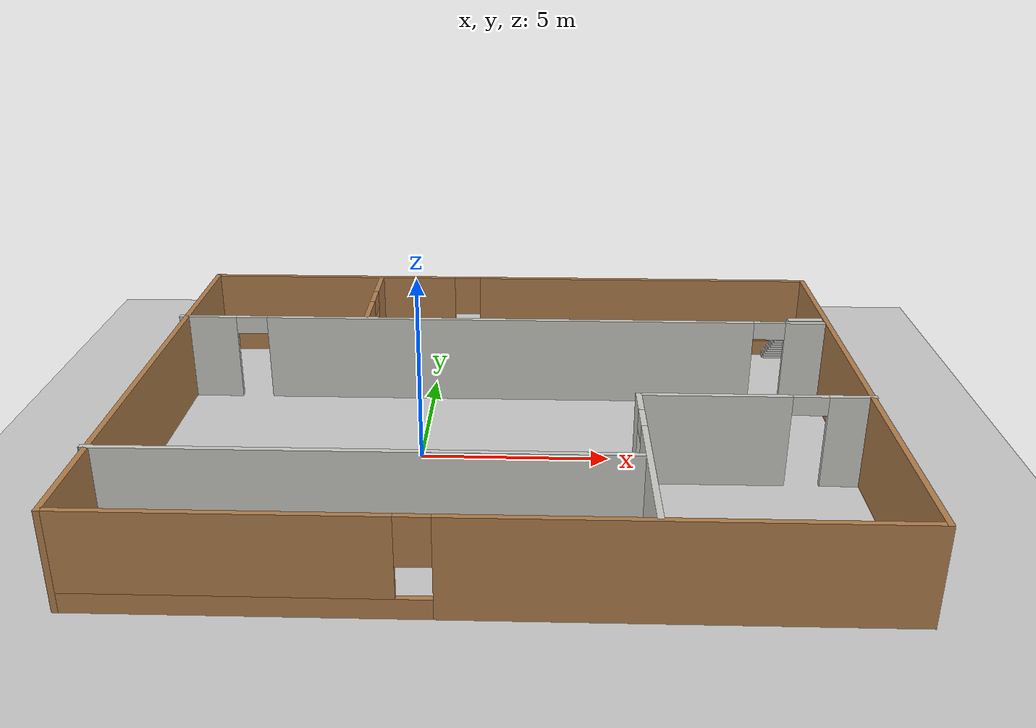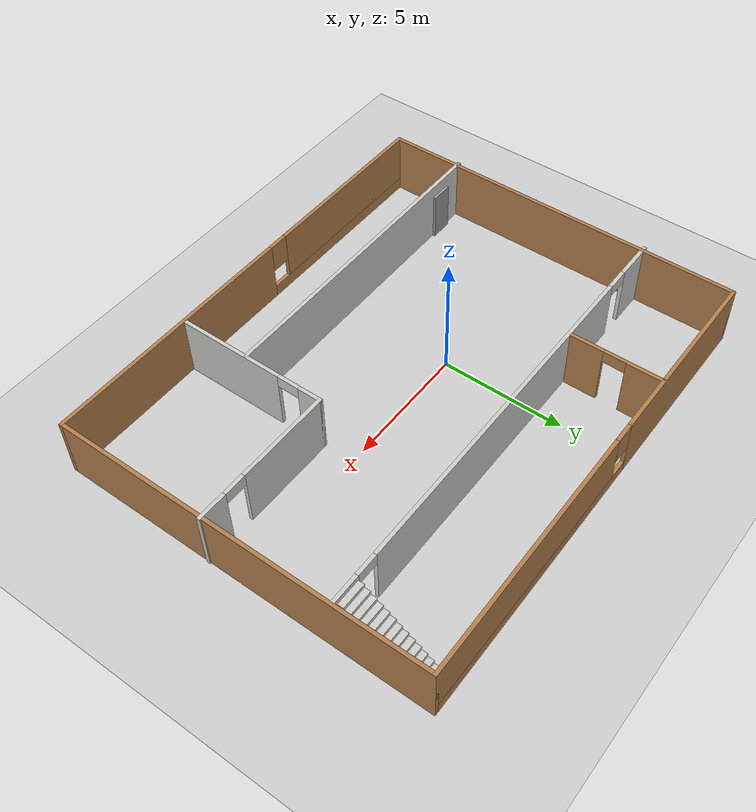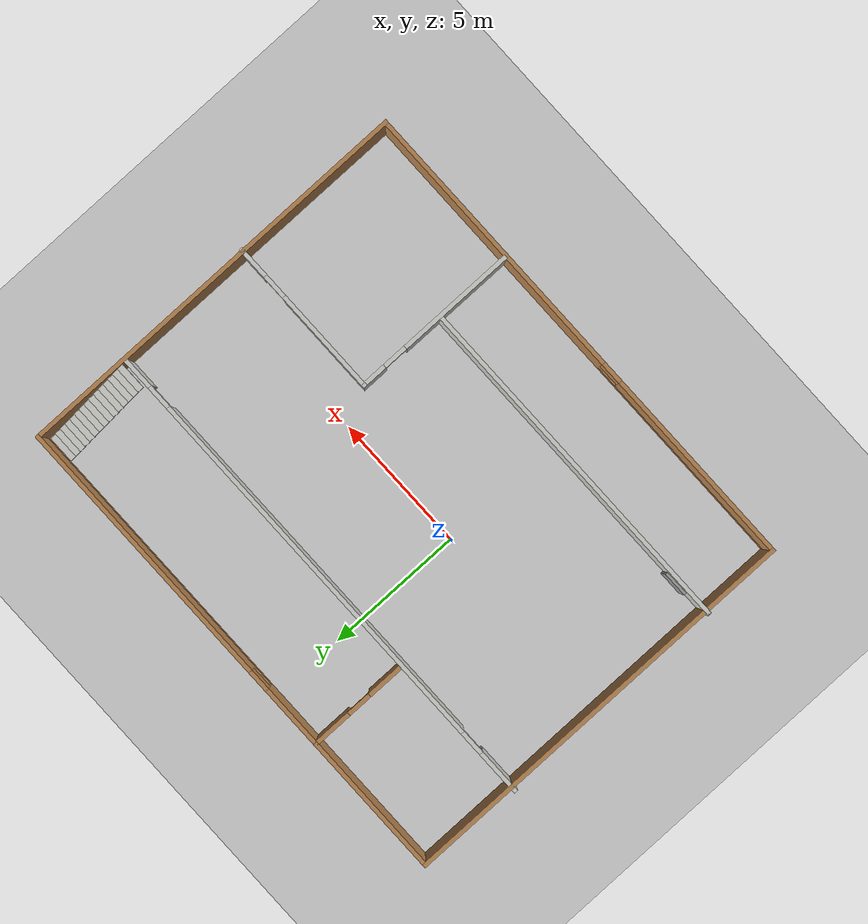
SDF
<sdf version="1.7">
 <world name="default">
  <light name="sun" type="directional">
   <pose>0 0 10 0 -0 0</pose>
   <diffuse>0.8 0.8 0.8 1</diffuse>
   <specular>0.2 0.2 0.2 1</specular>
   <attenuation>
    <range>1000</range>
    <constant>0.9</constant>
    <linear>0.01</linear>
    <quadratic>0.001</quadratic>
   </attenuation>
   <direction>-0.5 0.1 -0.9</direction>
   <spot><inner_angle>0</inner_angle><outer_angle>0</outer_angle><falloff>0</falloff></spot>
  </light>
  <model name="ground_plane">
   <static>1</static>
   <link name="link">
    <collision name="collision">
     <geometry><plane><normal>0 0 1</normal><size>100 100</size></plane></geometry>
     <surface>
      <contact><collide_bitmask>65535</collide_bitmask></contact>
      <friction><ode><mu>100</mu><mu2>50</mu2></ode></friction>
     </surface>
    </collision>
    <visual name="visual">
     <cast_shadows>0</cast_shadows>
     <geometry><plane><normal>0 0 1</normal><size>100 100</size></plane></geometry>
     <material>
      <script><uri>file://media/materials/scripts/gazebo.material</uri><name>Gazebo/Grey</name></script>
     </material>
    </visual>
   </link>
  </model>
  <gravity>0 0 -9.8</gravity>
  <magnetic_field>6e-06 2.3e-05 -4.2e-05</magnetic_field>
  <atmosphere type="adiabatic"/>
  <physics type="ode">
   <max_step_size>0.001</max_step_size>
   <real_time_factor>1</real_time_factor>
   <real_time_update_rate>1000</real_time_update_rate>
  </physics>
  <scene><ambient>0.4 0.4 0.4 1</ambient><background>0.7 0.7 0.7 1</background><shadows>1</shadows></scene>
  <audio><device>default</device></audio>
  <spherical_coordinates>
   <surface_model>EARTH_WGS84</surface_model>
   <latitude_deg>0</latitude_deg>
   <longitude_deg>0</longitude_deg>
   <elevation>0</elevation>
   <heading_deg>0</heading_deg>
  </spherical_coordinates>
  <model name="test">
   <pose>2.07152 0.081363 0 0 -0 0</pose>
   <link name="Door_3">
    <collision name="Door_3_Collision">
     <geometry><box><size>0.9 0.17 2</size></box></geometry>
     <pose>0 0 1 0 -0 0</pose>
    </collision>
    <visual name="Door_3_Visual">
     <pose>0 0 1 0 -0 0</pose>
     <geometry><box><size>0.9 0.17 2</size></box></geometry>
     <material>
      <script><uri>file://media/materials/scripts/gazebo.material</uri><name>Gazebo/Grey</name></script>
     </material>
    </visual>
    <pose>-7.99611 -4.57247 0 0 -0 0</pose>
   </link>
   <link name="Stairs_0">
    <visual name="Stairs_0_Visual_0">
     <pose>8.7525 7.34265 0.083333 0 -0 0</pose>
     <geometry><box><size>1 0.233333 0.166667</size></box></geometry>
     <material>
      <script><uri>file://media/materials/scripts/gazebo.material</uri><name>Gazebo/CeilingTiled</name></script>
      <ambient>1 1 1 1</ambient>
     </material>
     <meta><layer>0</layer></meta>
    </visual>
    <collision name="Stairs_0_Collision_0">
     <geometry><box><size>1 0.233333 0.166667</size></box></geometry>
     <pose>8.7525 7.34265 0.083333 0 -0 0</pose>
    </collision>
    <visual name="Stairs_0_Visual_1">
     <pose>8.7525 7.10932 0.25 0 -0 0</pose>
     <geometry><box><size>1 0.233333 0.166667</size></box></geometry>
     <material>
      <script><uri>file://media/materials/scripts/gazebo.material</uri><name>Gazebo/CeilingTiled</name></script>
      <ambient>1 1 1 1</ambient>
     </material>
     <meta><layer>0</layer></meta>
    </visual>
    <collision name="Stairs_0_Collision_1">
     <geometry><box><size>1 0.233333 0.166667</size></box></geometry>
     <pose>8.7525 7.10932 0.25 0 -0 0</pose>
    </collision>
    <visual name="Stairs_0_Visual_2">
     <pose>8.7525 6.87598 0.416667 0 -0 0</pose>
     <geometry><box><size>1 0.233333 0.166667</size></box></geometry>
     <material>
      <script><uri>file://media/materials/scripts/gazebo.material</uri><name>Gazebo/CeilingTiled</name></script>
      <ambient>1 1 1 1</ambient>
     </material>
     <meta><layer>0</layer></meta>
    </visual>
    <collision name="Stairs_0_Collision_2">
     <geometry><box><size>1 0.233333 0.166667</size></box></geometry>
     <pose>8.7525 6.87598 0.416667 0 -0 0</pose>
    </collision>
    <visual name="Stairs_0_Visual_3">
     <pose>8.7525 6.64265 0.583333 0 -0 0</pose>
     <geometry><box><size>1 0.233333 0.166667</size></box></geometry>
     <material>
      <script><uri>file://media/materials/scripts/gazebo.material</uri><name>Gazebo/CeilingTiled</name></script>
      <ambient>1 1 1 1</ambient>
     </material>
     <meta><layer>0</layer></meta>
    </visual>
    <collision name="Stairs_0_Collision_3">
     <geometry><box><size>1 0.233333 0.166667</size></box></geometry>
     <pose>8.7525 6.64265 0.583333 0 -0 0</pose>
    </collision>
    <visual name="Stairs_0_Visual_4">
     <pose>8.7525 6.40932 0.75 0 -0 0</pose>
     <geometry><box><size>1 0.233333 0.166667</size></box></geometry>
     <material>
      <script><uri>file://media/materials/scripts/gazebo.material</uri><name>Gazebo/CeilingTiled</name></script>
      <ambient>1 1 1 1</ambient>
     </material>
     <meta><layer>0</layer></meta>
    </visual>
    <collision name="Stairs_0_Collision_4">
     <geometry><box><size>1 0.233333 0.166667</size></box></geometry>
     <pose>8.7525 6.40932 0.75 0 -0 0</pose>
    </collision>
    <visual name="Stairs_0_Visual_5">
     <pose>8.7525 6.17598 0.916667 0 -0 0</pose>
     <geometry><box><size>1 0.233333 0.166667</size></box></geometry>
     <material>
      <script><uri>file://media/materials/scripts/gazebo.material</uri><name>Gazebo/CeilingTiled</name></script>
      <ambient>1 1 1 1</ambient>
     </material>
     <meta><layer>0</layer></meta>
    </visual>
    <collision name="Stairs_0_Collision_5">
     <geometry><box><size>1 0.233333 0.166667</size></box></geometry>
     <pose>8.7525 6.17598 0.916667 0 -0 0</pose>
    </collision>
    <visual name="Stairs_0_Visual_6">
     <pose>8.7525 5.94265 1.08333 0 -0 0</pose>
     <geometry><box><size>1 0.233333 0.166667</size></box></geometry>
     <material>
      <script><uri>file://media/materials/scripts/gazebo.material</uri><name>Gazebo/CeilingTiled</name></script>
      <ambient>1 1 1 1</ambient>
     </material>
     <meta><layer>0</layer></meta>
    </visual>
    <collision name="Stairs_0_Collision_6">
     <geometry><box><size>1 0.233333 0.166667</size></box></geometry>
     <pose>8.7525 5.94265 1.08333 0 -0 0</pose>
    </collision>
    <visual name="Stairs_0_Visual_7">
     <pose>8.7525 5.70932 1.25 0 -0 0</pose>
     <geometry><box><size>1 0.233333 0.166667</size></box></geometry>
     <material>
      <script><uri>file://media/materials/scripts/gazebo.material</uri><name>Gazebo/CeilingTiled</name></script>
      <ambient>1 1 1 1</ambient>
     </material>
     <meta><layer>0</layer></meta>
    </visual>
    <collision name="Stairs_0_Collision_7">
     <geometry><box><size>1 0.233333 0.166667</size></box></geometry>
     <pose>8.7525 5.70932 1.25 0 -0 0</pose>
    </collision>
    <visual name="Stairs_0_Visual_8">
     <pose>8.7525 5.47598 1.41667 0 -0 0</pose>
     <geometry><box><size>1 0.233333 0.166667</size></box></geometry>
     <material>
      <script><uri>file://media/materials/scripts/gazebo.material</uri><name>Gazebo/CeilingTiled</name></script>
      <ambient>1 1 1 1</ambient>
     </material>
     <meta><layer>0</layer></meta>
    </visual>
    <collision name="Stairs_0_Collision_8">
     <geometry><box><size>1 0.233333 0.166667</size></box></geometry>
     <pose>8.7525 5.47598 1.41667 0 -0 0</pose>
    </collision>
    <visual name="Stairs_0_Visual_9">
     <pose>8.7525 5.24265 1.58333 0 -0 0</pose>
     <geometry><box><size>1 0.233333 0.166667</size></box></geometry>
     <material>
      <script><uri>file://media/materials/scripts/gazebo.material</uri><name>Gazebo/CeilingTiled</name></script>
      <ambient>1 1 1 1</ambient>
     </material>
     <meta><layer>0</layer></meta>
    </visual>
    <collision name="Stairs_0_Collision_9">
     <geometry><box><size>1 0.233333 0.166667</size></box></geometry>
     <pose>8.7525 5.24265 1.58333 0 -0 0</pose>
    </collision>
    <visual name="Stairs_0_Visual_10">
     <pose>8.7525 5.00932 1.75 0 -0 0</pose>
     <geometry><box><size>1 0.233333 0.166667</size></box></geometry>
     <material>
      <script><uri>file://media/materials/scripts/gazebo.material</uri><name>Gazebo/CeilingTiled</name></script>
      <ambient>1 1 1 1</ambient>
     </material>
     <meta><layer>0</layer></meta>
    </visual>
    <collision name="Stairs_0_Collision_10">
     <geometry><box><size>1 0.233333 0.166667</size></box></geometry>
     <pose>8.7525 5.00932 1.75 0 -0 0</pose>
    </collision>
    <visual name="Stairs_0_Visual_11">
     <pose>8.7525 4.77598 1.91667 0 -0 0</pose>
     <geometry><box><size>1 0.233333 0.166667</size></box></geometry>
     <material>
      <script><uri>file://media/materials/scripts/gazebo.material</uri><name>Gazebo/CeilingTiled</name></script>
      <ambient>1 1 1 1</ambient>
     </material>
     <meta><layer>0</layer></meta>
    </visual>
    <collision name="Stairs_0_Collision_11">
     <geometry><box><size>1 0.233333 0.166667</size></box></geometry>
     <pose>8.7525 4.77598 1.91667 0 -0 0</pose>
    </collision>
    <visual name="Stairs_0_Visual_12">
     <pose>8.7525 4.54265 2.08333 0 -0 0</pose>
     <geometry><box><size>1 0.233333 0.166667</size></box></geometry>
     <material>
      <script><uri>file://media/materials/scripts/gazebo.material</uri><name>Gazebo/CeilingTiled</name></script>
      <ambient>1 1 1 1</ambient>
     </material>
     <meta><layer>0</layer></meta>
    </visual>
    <collision name="Stairs_0_Collision_12">
     <geometry><box><size>1 0.233333 0.166667</size></box></geometry>
     <pose>8.7525 4.54265 2.08333 0 -0 0</pose>
    </collision>
    <visual name="Stairs_0_Visual_13">
     <pose>8.7525 4.30932 2.25 0 -0 0</pose>
     <geometry><box><size>1 0.233333 0.166667</size></box></geometry>
     <material>
      <script><uri>file://media/materials/scripts/gazebo.material</uri><name>Gazebo/CeilingTiled</name></script>
      <ambient>1 1 1 1</ambient>
     </material>
     <meta><layer>0</layer></meta>
    </visual>
    <collision name="Stairs_0_Collision_13">
     <geometry><box><size>1 0.233333 0.166667</size></box></geometry>
     <pose>8.7525 4.30932 2.25 0 -0 0</pose>
    </collision>
    <visual name="Stairs_0_Visual_14">
     <pose>8.7525 4.07598 2.41667 0 -0 0</pose>
     <geometry><box><size>1 0.233333 0.166667</size></box></geometry>
     <material>
      <script><uri>file://media/materials/scripts/gazebo.material</uri><name>Gazebo/CeilingTiled</name></script>
      <ambient>1 1 1 1</ambient>
     </material>
     <meta><layer>0</layer></meta>
    </visual>
    <collision name="Stairs_0_Collision_14">
     <geometry><box><size>1 0.233333 0.166667</size></box></geometry>
     <pose>8.7525 4.07598 2.41667 0 -0 0</pose>
    </collision>
   </link>
   <link name="Wall_11">
    <pose>3.54182 -4.40695 0 0 -0 1.5708</pose>
    <visual name="Wall_11_Visual_0">
     <pose>-0.93978 0 1.25 0 -0 0</pose>
     <geometry><box><size>4.37044 0.15 2.5</size></box></geometry>
     <material>
      <script><uri>file://media/materials/scripts/gazebo.material</uri><name>Gazebo/CeilingTiled</name></script>
      <ambient>1 1 1 1</ambient>
     </material>
     <meta><layer>0</layer></meta>
    </visual>
    <collision name="Wall_11_Collision_0">
     <geometry><box><size>4.37044 0.15 2.5</size></box></geometry>
     <pose>-0.93978 0 1.25 0 -0 0</pose>
    </collision>
    <visual name="Wall_11_Visual_1">
     <pose>2.63522 0 1.25 0 -0 0</pose>
     <geometry><box><size>0.979561 0.15 2.5</size></box></geometry>
     <material>
      <script><uri>file://media/materials/scripts/gazebo.material</uri><name>Gazebo/CeilingTiled</name></script>
      <ambient>1 1 1 1</ambient>
     </material>
     <meta><layer>0</layer></meta>
    </visual>
    <collision name="Wall_11_Collision_1">
     <geometry><box><size>0.979561 0.15 2.5</size></box></geometry>
     <pose>2.63522 0 1.25 0 -0 0</pose>
    </collision>
    <visual name="Wall_11_Visual_2">
     <pose>1.69544 0 2.25 0 -0 0</pose>
     <geometry><box><size>0.9 0.15 0.5</size></box></geometry>
     <material>
      <script><uri>file://media/materials/scripts/gazebo.material</uri><name>Gazebo/CeilingTiled</name></script>
      <ambient>1 1 1 1</ambient>
     </material>
     <meta><layer>0</layer></meta>
    </visual>
    <collision name="Wall_11_Collision_2">
     <geometry><box><size>0.9 0.15 0.5</size></box></geometry>
     <pose>1.69544 0 2.25 0 -0 0</pose>
    </collision>
   </link>
   <link name="Wall_12">
    <pose>6.46682 -1.35695 0 0 -0 0</pose>
    <visual name="Wall_12_Visual_0">
     <pose>-1.0474 0 1.25 0 -0 0</pose>
     <geometry><box><size>3.9052 0.15 2.5</size></box></geometry>
     <material>
      <script><uri>file://media/materials/scripts/gazebo.material</uri><name>Gazebo/CeilingTiled</name></script>
      <ambient>1 1 1 1</ambient>
     </material>
     <meta><layer>0</layer></meta>
    </visual>
    <collision name="Wall_12_Collision_0">
     <geometry><box><size>3.9052 0.15 2.5</size></box></geometry>
     <pose>-1.0474 0 1.25 0 -0 0</pose>
    </collision>
    <visual name="Wall_12_Visual_1">
     <pose>2.4026 0 1.25 0 -0 0</pose>
     <geometry><box><size>1.1948 0.15 2.5</size></box></geometry>
     <material>
      <script><uri>file://media/materials/scripts/gazebo.material</uri><name>Gazebo/CeilingTiled</name></script>
      <ambient>1 1 1 1</ambient>
     </material>
     <meta><layer>0</layer></meta>
    </visual>
    <collision name="Wall_12_Collision_1">
     <geometry><box><size>1.1948 0.15 2.5</size></box></geometry>
     <pose>2.4026 0 1.25 0 -0 0</pose>
    </collision>
    <visual name="Wall_12_Visual_2">
     <pose>1.3552 0 2.25 0 -0 0</pose>
     <geometry><box><size>0.9 0.15 0.5</size></box></geometry>
     <material>
      <script><uri>file://media/materials/scripts/gazebo.material</uri><name>Gazebo/CeilingTiled</name></script>
      <ambient>1 1 1 1</ambient>
     </material>
     <meta><layer>0</layer></meta>
    </visual>
    <collision name="Wall_12_Collision_2">
     <geometry><box><size>0.9 0.15 0.5</size></box></geometry>
     <pose>1.3552 0 2.25 0 -0 0</pose>
    </collision>
   </link>
   <link name="Wall_14">
    <collision name="Wall_14_Collision">
     <geometry><box><size>0.16 0.15 2.5</size></box></geometry>
     <pose>0 0 1.25 0 -0 0</pose>
    </collision>
    <visual name="Wall_14_Visual">
     <pose>0 0 1.25 0 -0 0</pose>
     <geometry><box><size>0.16 0.15 2.5</size></box></geometry>
     <material>
      <script><uri>file://media/materials/scripts/gazebo.material</uri><name>Gazebo/Grey</name></script>
      <ambient>1 1 1 1</ambient>
     </material>
     <meta><layer>0</layer></meta>
    </visual>
    <pose>-9.3403 -4.66552 0 0 -0 0</pose>
   </link>
   <link name="Wall_15">
    <collision name="Wall_15_Collision">
     <geometry><box><size>13 0.15 2.5</size></box></geometry>
     <pose>0 0 1.25 0 -0 0</pose>
    </collision>
    <visual name="Wall_15_Visual">
     <pose>0 0 1.25 0 -0 0</pose>
     <geometry><box><size>13 0.15 2.5</size></box></geometry>
     <material>
      <script><uri>file://media/materials/scripts/gazebo.material</uri><name>Gazebo/CeilingTiled</name></script>
      <ambient>1 1 1 1</ambient>
     </material>
     <meta><layer>0</layer></meta>
    </visual>
    <pose>-2.9103 -4.66552 0 0 -0 0</pose>
   </link>
   <link name="Wall_2">
    <collision name="Wall_2_Collision">
     <geometry><box><size>15.25 0.15 2.5</size></box></geometry>
     <pose>0 0 1.25 0 -0 0</pose>
    </collision>
    <visual name="Wall_2_Visual">
     <pose>0 0 1.25 0 -0 0</pose>
     <geometry><box><size>15.25 0.15 2.5</size></box></geometry>
     <material>
      <script><uri>file://media/materials/scripts/gazebo.material</uri><name>Gazebo/Wood</name></script>
      <ambient>1 1 1 1</ambient>
     </material>
     <meta><layer>0</layer></meta>
    </visual>
    <pose>-9.25225 0 0 0 -0 1.5708</pose>
   </link>
   <link name="Wall_3">
    <pose>0.047747 7.55 0 0 -0 0</pose>
    <visual name="Wall_3_Visual_0">
     <pose>-5.53644 0 1.25 0 -0 0</pose>
     <geometry><box><size>7.67711 0.15 2.5</size></box></geometry>
     <material>
      <script><uri>file://media/materials/scripts/gazebo.material</uri><name>Gazebo/Wood</name></script>
      <ambient>1 1 1 1</ambient>
     </material>
     <meta><layer>0</layer></meta>
    </visual>
    <collision name="Wall_3_Collision_0">
     <geometry><box><size>7.67711 0.15 2.5</size></box></geometry>
     <pose>-5.53644 0 1.25 0 -0 0</pose>
    </collision>
    <visual name="Wall_3_Visual_1">
     <pose>3.83856 0 0.25 0 -0 0</pose>
     <geometry><box><size>11.0729 0.15 0.5</size></box></geometry>
     <material>
      <script><uri>file://media/materials/scripts/gazebo.material</uri><name>Gazebo/Wood</name></script>
      <ambient>1 1 1 1</ambient>
     </material>
     <meta><layer>0</layer></meta>
    </visual>
    <collision name="Wall_3_Collision_1">
     <geometry><box><size>11.0729 0.15 0.5</size></box></geometry>
     <pose>3.83856 0 0.25 0 -0 0</pose>
    </collision>
    <visual name="Wall_3_Visual_2">
     <pose>4.23856 0 1.5 0 -0 0</pose>
     <geometry><box><size>10.2729 0.15 2</size></box></geometry>
     <material>
      <script><uri>file://media/materials/scripts/gazebo.material</uri><name>Gazebo/Wood</name></script>
      <ambient>1 1 1 1</ambient>
     </material>
     <meta><layer>0</layer></meta>
    </visual>
    <collision name="Wall_3_Collision_2">
     <geometry><box><size>10.2729 0.15 2</size></box></geometry>
     <pose>4.23856 0 1.5 0 -0 0</pose>
    </collision>
    <visual name="Wall_3_Visual_3">
     <pose>-1.29789 0 1.9 0 -0 0</pose>
     <geometry><box><size>0.8 0.15 1.2</size></box></geometry>
     <material>
      <script><uri>file://media/materials/scripts/gazebo.material</uri><name>Gazebo/Wood</name></script>
      <ambient>1 1 1 1</ambient>
     </material>
     <meta><layer>0</layer></meta>
    </visual>
    <collision name="Wall_3_Collision_3">
     <geometry><box><size>0.8 0.15 1.2</size></box></geometry>
     <pose>-1.29789 0 1.9 0 -0 0</pose>
    </collision>
   </link>
   <link name="Wall_4">
    <collision name="Wall_4_Collision">
     <geometry><box><size>15.25 0.15 2.5</size></box></geometry>
     <pose>0 0 1.25 0 -0 0</pose>
    </collision>
    <visual name="Wall_4_Visual">
     <pose>0 0 1.25 0 -0 0</pose>
     <geometry><box><size>15.25 0.15 2.5</size></box></geometry>
     <material>
      <script><uri>file://media/materials/scripts/gazebo.material</uri><name>Gazebo/Wood</name></script>
      <ambient>1 1 1 1</ambient>
     </material>
     <meta><layer>0</layer></meta>
    </visual>
    <pose>9.34775 0 0 0 -0 -1.5708</pose>
   </link>
   <link name="Wall_5">
    <pose>0.047747 -7.55 0 0 -0 3.14159</pose>
    <visual name="Wall_5_Visual_0">
     <pose>-4.09898 0 1.25 0 -0 0</pose>
     <geometry><box><size>10.552 0.15 2.5</size></box></geometry>
     <material>
      <script><uri>file://media/materials/scripts/gazebo.material</uri><name>Gazebo/Wood</name></script>
      <ambient>1 1 1 1</ambient>
     </material>
     <meta><layer>0</layer></meta>
    </visual>
    <collision name="Wall_5_Collision_0">
     <geometry><box><size>10.552 0.15 2.5</size></box></geometry>
     <pose>-4.09898 0 1.25 0 -0 0</pose>
    </collision>
    <visual name="Wall_5_Visual_1">
     <pose>5.27602 0 0.25 0 -0 0</pose>
     <geometry><box><size>8.19797 0.15 0.5</size></box></geometry>
     <material>
      <script><uri>file://media/materials/scripts/gazebo.material</uri><name>Gazebo/Wood</name></script>
      <ambient>1 1 1 1</ambient>
     </material>
     <meta><layer>0</layer></meta>
    </visual>
    <collision name="Wall_5_Collision_1">
     <geometry><box><size>8.19797 0.15 0.5</size></box></geometry>
     <pose>5.27602 0 0.25 0 -0 0</pose>
    </collision>
    <visual name="Wall_5_Visual_2">
     <pose>5.67601 0 1.5 0 -0 0</pose>
     <geometry><box><size>7.39797 0.15 2</size></box></geometry>
     <material>
      <script><uri>file://media/materials/scripts/gazebo.material</uri><name>Gazebo/Wood</name></script>
      <ambient>1 1 1 1</ambient>
     </material>
     <meta><layer>0</layer></meta>
    </visual>
    <collision name="Wall_5_Collision_2">
     <geometry><box><size>7.39797 0.15 2</size></box></geometry>
     <pose>5.67601 0 1.5 0 -0 0</pose>
    </collision>
    <visual name="Wall_5_Visual_3">
     <pose>1.57703 0 1.9 0 -0 0</pose>
     <geometry><box><size>0.8 0.15 1.2</size></box></geometry>
     <material>
      <script><uri>file://media/materials/scripts/gazebo.material</uri><name>Gazebo/Wood</name></script>
      <ambient>1 1 1 1</ambient>
     </material>
     <meta><layer>0</layer></meta>
    </visual>
    <collision name="Wall_5_Collision_3">
     <geometry><box><size>0.8 0.15 1.2</size></box></geometry>
     <pose>1.57703 0 1.9 0 -0 0</pose>
    </collision>
   </link>
   <link name="Wall_7">
    <pose>-0.091824 3.80184 0 0 -0 0</pose>
    <visual name="Wall_7_Visual_0">
     <pose>-8.53897 0 1.25 0 -0 0</pose>
     <geometry><box><size>1.67205 0.15 2.5</size></box></geometry>
     <material>
      <script><uri>file://media/materials/scripts/gazebo.material</uri><name>Gazebo/CeilingTiled</name></script>
      <ambient>1 1 1 1</ambient>
     </material>
     <meta><layer>0</layer></meta>
    </visual>
    <collision name="Wall_7_Collision_0">
     <geometry><box><size>1.67205 0.15 2.5</size></box></geometry>
     <pose>-8.53897 0 1.25 0 -0 0</pose>
    </collision>
    <visual name="Wall_7_Visual_1">
     <pose>0.260664 0 1.25 0 -0 0</pose>
     <geometry><box><size>14.1272 0.15 2.5</size></box></geometry>
     <material>
      <script><uri>file://media/materials/scripts/gazebo.material</uri><name>Gazebo/CeilingTiled</name></script>
      <ambient>1 1 1 1</ambient>
     </material>
     <meta><layer>0</layer></meta>
    </visual>
    <collision name="Wall_7_Collision_1">
     <geometry><box><size>14.1272 0.15 2.5</size></box></geometry>
     <pose>0.260664 0 1.25 0 -0 0</pose>
    </collision>
    <visual name="Wall_7_Visual_2">
     <pose>8.79964 0 1.25 0 -0 0</pose>
     <geometry><box><size>1.15072 0.15 2.5</size></box></geometry>
     <material>
      <script><uri>file://media/materials/scripts/gazebo.material</uri><name>Gazebo/CeilingTiled</name></script>
      <ambient>1 1 1 1</ambient>
     </material>
     <meta><layer>0</layer></meta>
    </visual>
    <collision name="Wall_7_Collision_2">
     <geometry><box><size>1.15072 0.15 2.5</size></box></geometry>
     <pose>8.79964 0 1.25 0 -0 0</pose>
    </collision>
    <visual name="Wall_7_Visual_3">
     <pose>-7.25295 0 2.25 0 -0 0</pose>
     <geometry><box><size>0.9 0.15 0.5</size></box></geometry>
     <material>
      <script><uri>file://media/materials/scripts/gazebo.material</uri><name>Gazebo/CeilingTiled</name></script>
      <ambient>1 1 1 1</ambient>
     </material>
     <meta><layer>0</layer></meta>
    </visual>
    <collision name="Wall_7_Collision_3">
     <geometry><box><size>0.9 0.15 0.5</size></box></geometry>
     <pose>-7.25295 0 2.25 0 -0 0</pose>
    </collision>
    <visual name="Wall_7_Visual_4">
     <pose>7.77428 0 2.25 0 -0 0</pose>
     <geometry><box><size>0.9 0.15 0.5</size></box></geometry>
     <material>
      <script><uri>file://media/materials/scripts/gazebo.material</uri><name>Gazebo/CeilingTiled</name></script>
      <ambient>1 1 1 1</ambient>
     </material>
     <meta><layer>0</layer></meta>
    </visual>
    <collision name="Wall_7_Collision_4">
     <geometry><box><size>0.9 0.15 0.5</size></box></geometry>
     <pose>7.77428 0 2.25 0 -0 0</pose>
    </collision>
   </link>
   <link name="Wall_9">
    <pose>-3.99505 5.74141 0 0 -0 1.5708</pose>
    <visual name="Wall_9_Visual_0">
     <pose>-1.20181 0 1.25 0 -0 0</pose>
     <geometry><box><size>1.34638 0.15 2.5</size></box></geometry>
     <material>
      <script><uri>file://media/materials/scripts/gazebo.material</uri><name>Gazebo/Wood</name></script>
      <ambient>1 1 1 1</ambient>
     </material>
     <meta><layer>0</layer></meta>
    </visual>
    <collision name="Wall_9_Collision_0">
     <geometry><box><size>1.34638 0.15 2.5</size></box></geometry>
     <pose>-1.20181 0 1.25 0 -0 0</pose>
    </collision>
    <visual name="Wall_9_Visual_1">
     <pose>1.12319 0 1.25 0 -0 0</pose>
     <geometry><box><size>1.50361 0.15 2.5</size></box></geometry>
     <material>
      <script><uri>file://media/materials/scripts/gazebo.material</uri><name>Gazebo/Wood</name></script>
      <ambient>1 1 1 1</ambient>
     </material>
     <meta><layer>0</layer></meta>
    </visual>
    <collision name="Wall_9_Collision_1">
     <geometry><box><size>1.50361 0.15 2.5</size></box></geometry>
     <pose>1.12319 0 1.25 0 -0 0</pose>
    </collision>
    <visual name="Wall_9_Visual_2">
     <pose>-0.078615 0 2.25 0 -0 0</pose>
     <geometry><box><size>0.9 0.15 0.5</size></box></geometry>
     <material>
      <script><uri>file://media/materials/scripts/gazebo.material</uri><name>Gazebo/Wood</name></script>
      <ambient>1 1 1 1</ambient>
     </material>
     <meta><layer>0</layer></meta>
    </visual>
    <collision name="Wall_9_Collision_2">
     <geometry><box><size>0.9 0.15 0.5</size></box></geometry>
     <pose>-0.078615 0 2.25 0 -0 0</pose>
    </collision>
   </link>
   <static>1</static>
  </model>
 </world>
</sdf>
